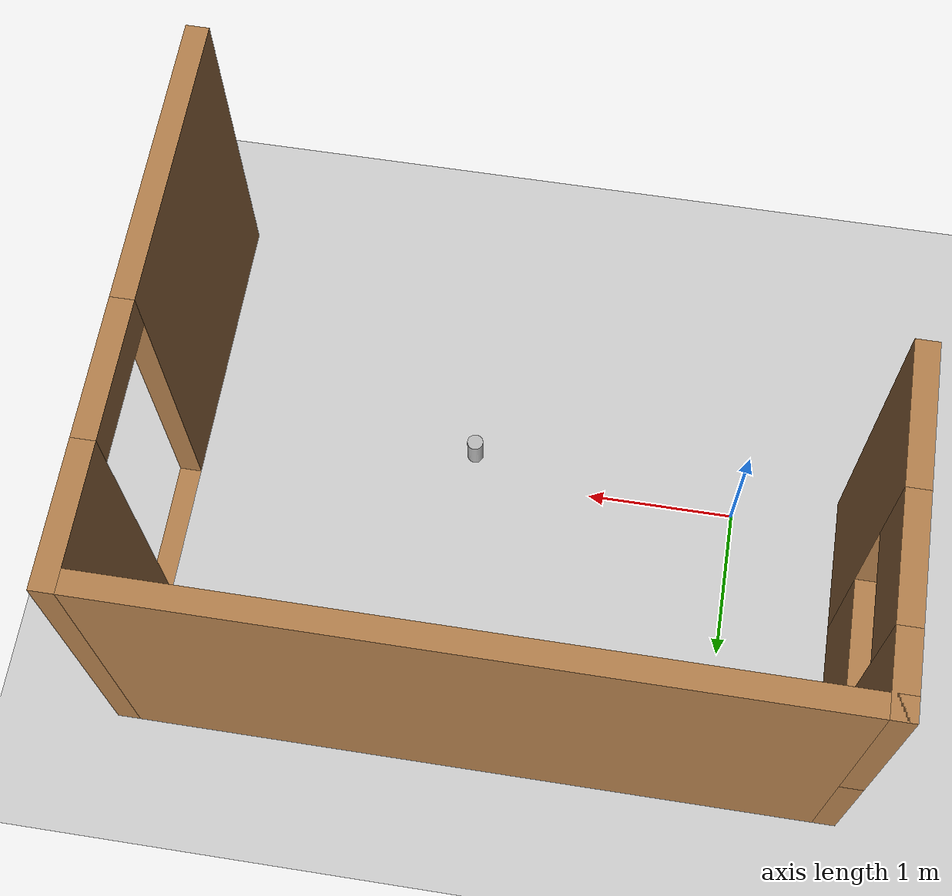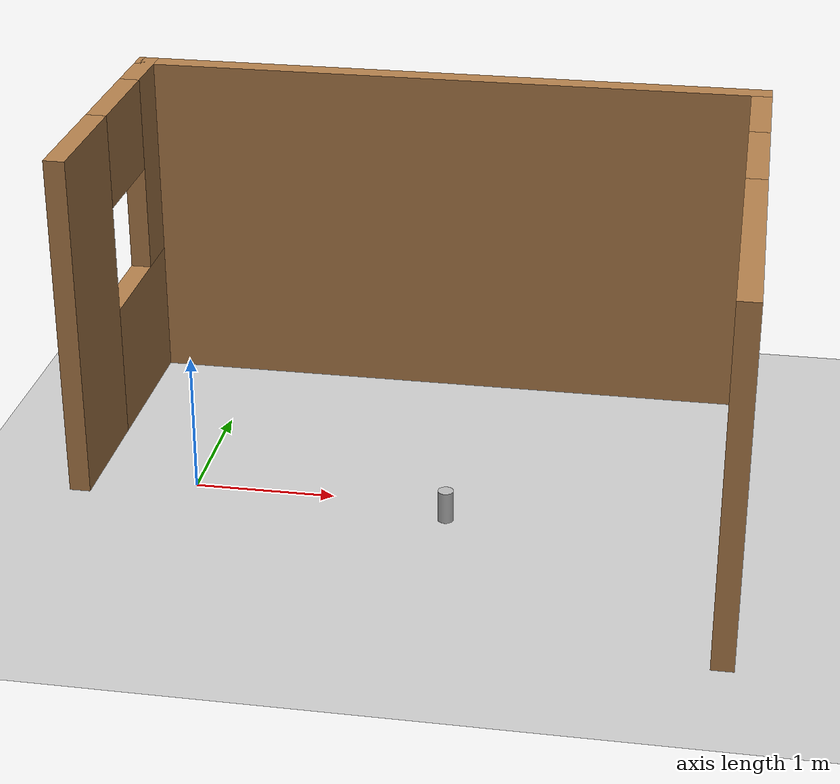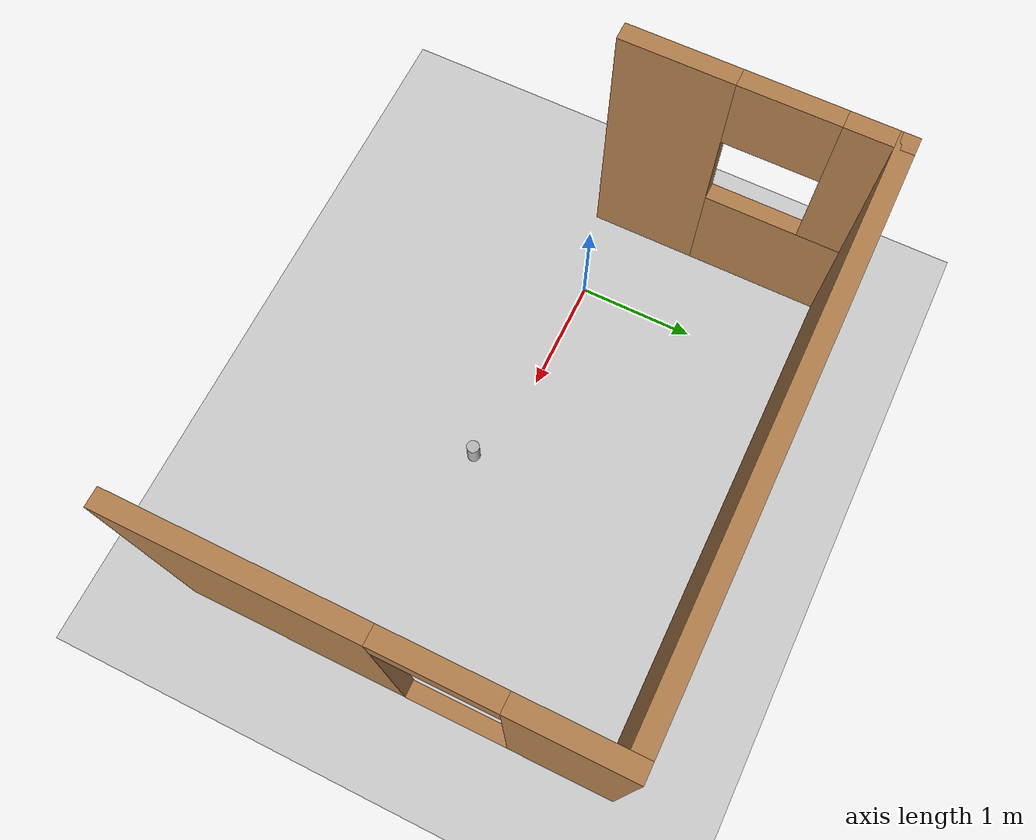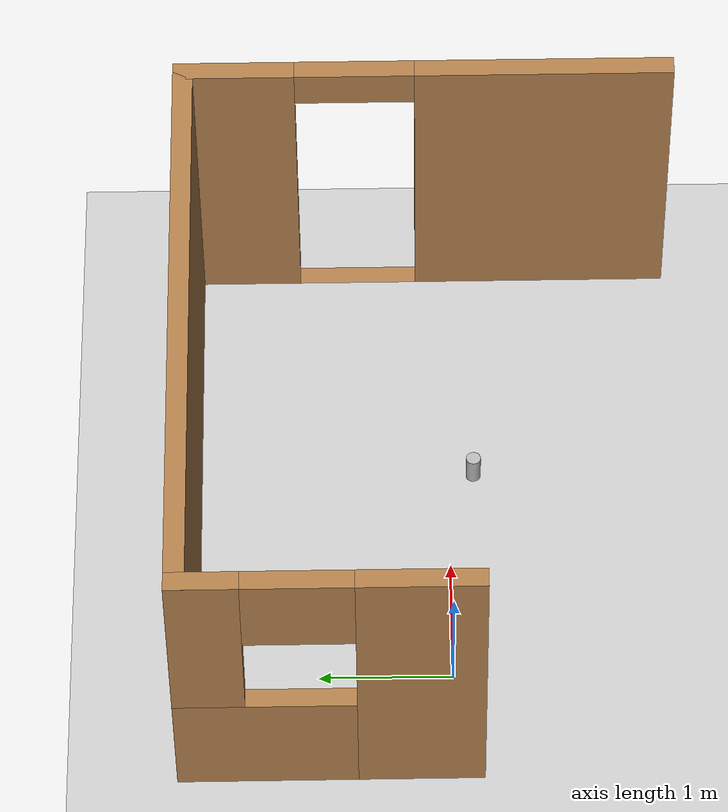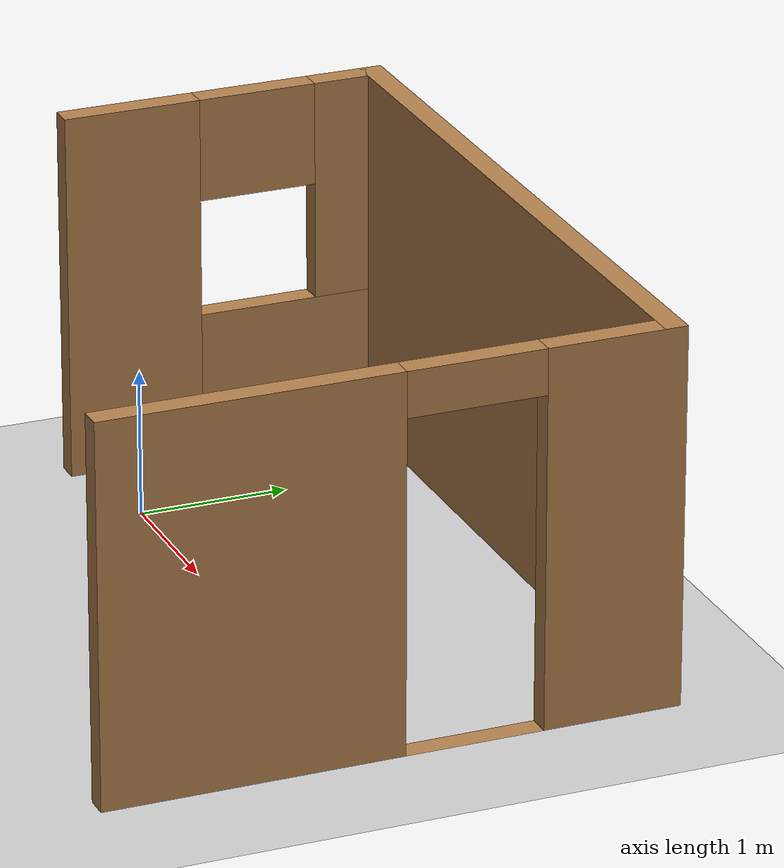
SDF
<sdf version="1.7">
 <world name="default">
  <light name="sun" type="directional">
   <pose>0 0 10 0 -0 0</pose>
   <diffuse>0.8 0.8 0.8 1</diffuse>
   <specular>0.2 0.2 0.2 1</specular>
   <attenuation>
    <range>1000</range>
    <constant>0.9</constant>
    <linear>0.01</linear>
    <quadratic>0.001</quadratic>
   </attenuation>
   <direction>-0.5 0.1 -0.9</direction>
   <spot><inner_angle>0</inner_angle><outer_angle>0</outer_angle><falloff>0</falloff></spot>
  </light>
  <model name="ground_plane">
   <static>1</static>
   <link name="link">
    <collision name="collision">
     <geometry><plane><normal>0 0 1</normal><size>100 100</size></plane></geometry>
     <surface><friction><ode><mu>100</mu><mu2>50</mu2></ode></friction></surface>
    </collision>
    <visual name="visual">
     <cast_shadows>0</cast_shadows>
     <geometry><plane><normal>0 0 1</normal><size>100 100</size></plane></geometry>
     <material>
      <script><uri>file://media/materials/scripts/gazebo.material</uri><name>Gazebo/Grey</name></script>
     </material>
    </visual>
   </link>
  </model>
  <gravity>0 0 -9.8</gravity>
  <magnetic_field>6e-06 2.3e-05 -4.2e-05</magnetic_field>
  <atmosphere type="adiabatic"/>
  <physics type="ode">
   <max_step_size>0.001</max_step_size>
   <real_time_factor>1</real_time_factor>
   <real_time_update_rate>1000</real_time_update_rate>
  </physics>
  <scene><ambient>0.4 0.4 0.4 1</ambient><background>0.7 0.7 0.7 1</background><shadows>1</shadows></scene>
  <audio><device>default</device></audio>
  <spherical_coordinates>
   <surface_model>EARTH_WGS84</surface_model>
   <latitude_deg>0</latitude_deg>
   <longitude_deg>0</longitude_deg>
   <elevation>0</elevation>
   <heading_deg>0</heading_deg>
  </spherical_coordinates>
  <model name="house">
   <pose>1.49761 0.159489 0 0 -0 0</pose>
   <link name="Wall_0">
    <pose>-2.3 0.75 0 0 -0 1.5708</pose>
    <visual name="Wall_0_Visual_0">
     <pose>-0.662394 0 1.25 0 -0 0</pose>
     <geometry><box><size>0.925211 0.15 2.5</size></box></geometry>
     <material>
      <script><uri>file://media/materials/scripts/gazebo.material</uri><name>Gazebo/Wood</name></script>
      <ambient>1 1 1 1</ambient>
     </material>
     <meta><layer>0</layer></meta>
    </visual>
    <collision name="Wall_0_Collision_0">
     <geometry><box><size>0.925211 0.15 2.5</size></box></geometry>
     <pose>-0.662394 0 1.25 0 -0 0</pose>
    </collision>
    <visual name="Wall_0_Visual_1">
     <pose>0.462606 0 0.5 0 -0 0</pose>
     <geometry><box><size>1.32479 0.15 1</size></box></geometry>
     <material>
      <script><uri>file://media/materials/scripts/gazebo.material</uri><name>Gazebo/Wood</name></script>
      <ambient>1 1 1 1</ambient>
     </material>
     <meta><layer>0</layer></meta>
    </visual>
    <collision name="Wall_0_Collision_1">
     <geometry><box><size>1.32479 0.15 1</size></box></geometry>
     <pose>0.462606 0 0.5 0 -0 0</pose>
    </collision>
    <visual name="Wall_0_Visual_2">
     <pose>0.862606 0 1.75 0 -0 0</pose>
     <geometry><box><size>0.524789 0.15 1.5</size></box></geometry>
     <material>
      <script><uri>file://media/materials/scripts/gazebo.material</uri><name>Gazebo/Wood</name></script>
      <ambient>1 1 1 1</ambient>
     </material>
     <meta><layer>0</layer></meta>
    </visual>
    <collision name="Wall_0_Collision_2">
     <geometry><box><size>0.524789 0.15 1.5</size></box></geometry>
     <pose>0.862606 0 1.75 0 -0 0</pose>
    </collision>
    <visual name="Wall_0_Visual_3">
     <pose>0.200211 0 2.15 0 -0 0</pose>
     <geometry><box><size>0.8 0.15 0.7</size></box></geometry>
     <material>
      <script><uri>file://media/materials/scripts/gazebo.material</uri><name>Gazebo/Wood</name></script>
      <ambient>1 1 1 1</ambient>
     </material>
     <meta><layer>0</layer></meta>
    </visual>
    <collision name="Wall_0_Collision_3">
     <geometry><box><size>0.8 0.15 0.7</size></box></geometry>
     <pose>0.200211 0 2.15 0 -0 0</pose>
    </collision>
   </link>
   <link name="Wall_1">
    <collision name="Wall_1_Collision">
     <geometry><box><size>4.75 0.15 2.5</size></box></geometry>
     <pose>0 0 1.25 0 -0 0</pose>
    </collision>
    <visual name="Wall_1_Visual">
     <pose>0 0 1.25 0 -0 0</pose>
     <geometry><box><size>4.75 0.15 2.5</size></box></geometry>
     <material>
      <script><uri>file://media/materials/scripts/gazebo.material</uri><name>Gazebo/Wood</name></script>
      <ambient>1 1 1 1</ambient>
     </material>
     <meta><layer>0</layer></meta>
    </visual>
    <pose>-0 1.8 0 0 -0 0</pose>
   </link>
   <link name="Wall_2">
    <pose>2.3 0 0 0 -0 -1.5708</pose>
    <visual name="Wall_2_Visual_0">
     <pose>-1.42141 0 1.25 0 -0 0</pose>
     <geometry><box><size>0.907187 0.15 2.5</size></box></geometry>
     <material>
      <script><uri>file://media/materials/scripts/gazebo.material</uri><name>Gazebo/Wood</name></script>
      <ambient>1 1 1 1</ambient>
     </material>
     <meta><layer>0</layer></meta>
    </visual>
    <collision name="Wall_2_Collision_0">
     <geometry><box><size>0.907187 0.15 2.5</size></box></geometry>
     <pose>-1.42141 0 1.25 0 -0 0</pose>
    </collision>
    <visual name="Wall_2_Visual_1">
     <pose>0.903593 0 1.25 0 -0 0</pose>
     <geometry><box><size>1.94281 0.15 2.5</size></box></geometry>
     <material>
      <script><uri>file://media/materials/scripts/gazebo.material</uri><name>Gazebo/Wood</name></script>
      <ambient>1 1 1 1</ambient>
     </material>
     <meta><layer>0</layer></meta>
    </visual>
    <collision name="Wall_2_Collision_1">
     <geometry><box><size>1.94281 0.15 2.5</size></box></geometry>
     <pose>0.903593 0 1.25 0 -0 0</pose>
    </collision>
    <visual name="Wall_2_Visual_2">
     <pose>-0.517813 0 0 0 -0 0</pose>
     <geometry><box><size>0.9 0.15 0</size></box></geometry>
     <material>
      <script><uri>file://media/materials/scripts/gazebo.material</uri><name>Gazebo/Wood</name></script>
      <ambient>1 1 1 1</ambient>
     </material>
     <meta><layer>0</layer></meta>
    </visual>
    <collision name="Wall_2_Collision_2">
     <geometry><box><size>0.9 0.15 0</size></box></geometry>
     <pose>-0.517813 0 0 0 -0 0</pose>
    </collision>
    <visual name="Wall_2_Visual_3">
     <pose>-0.517813 0 2.35 0 -0 0</pose>
     <geometry><box><size>0.9 0.15 0.3</size></box></geometry>
     <material>
      <script><uri>file://media/materials/scripts/gazebo.material</uri><name>Gazebo/Wood</name></script>
      <ambient>1 1 1 1</ambient>
     </material>
     <meta><layer>0</layer></meta>
    </visual>
    <collision name="Wall_2_Collision_3">
     <geometry><box><size>0.9 0.15 0.3</size></box></geometry>
     <pose>-0.517813 0 2.35 0 -0 0</pose>
    </collision>
   </link>
   <static>1</static>
  </model>
  <model name="beer">
   <link name="link">
    <pose>0 0 0.115 0 -0 0</pose>
    <inertial>
     <mass>0.39</mass>
     <inertia><ixx>0.00058</ixx><ixy>0</ixy><ixz>0</ixz><iyy>0.00058</iyy><iyz>0</iyz><izz>0.00019</izz></inertia>
    </inertial>
    <collision name="collision">
     <geometry><cylinder><radius>0.055</radius><length>0.23</length></cylinder></geometry>
    </collision>
    <visual name="visual">
     <geometry><cylinder><radius>0.055</radius><length>0.23</length></cylinder></geometry>
     <material>
      <script>
       <uri>model://beer/materials/scripts</uri>
       <uri>model://beer/materials/textures</uri>
       <name>Beer/Diffuse</name>
      </script>
     </material>
    </visual>
   </link>
   <pose>1.83294 -0.189079 -2e-06 1e-06 -0 -1e-05</pose>
  </model>
 </world>
</sdf>
